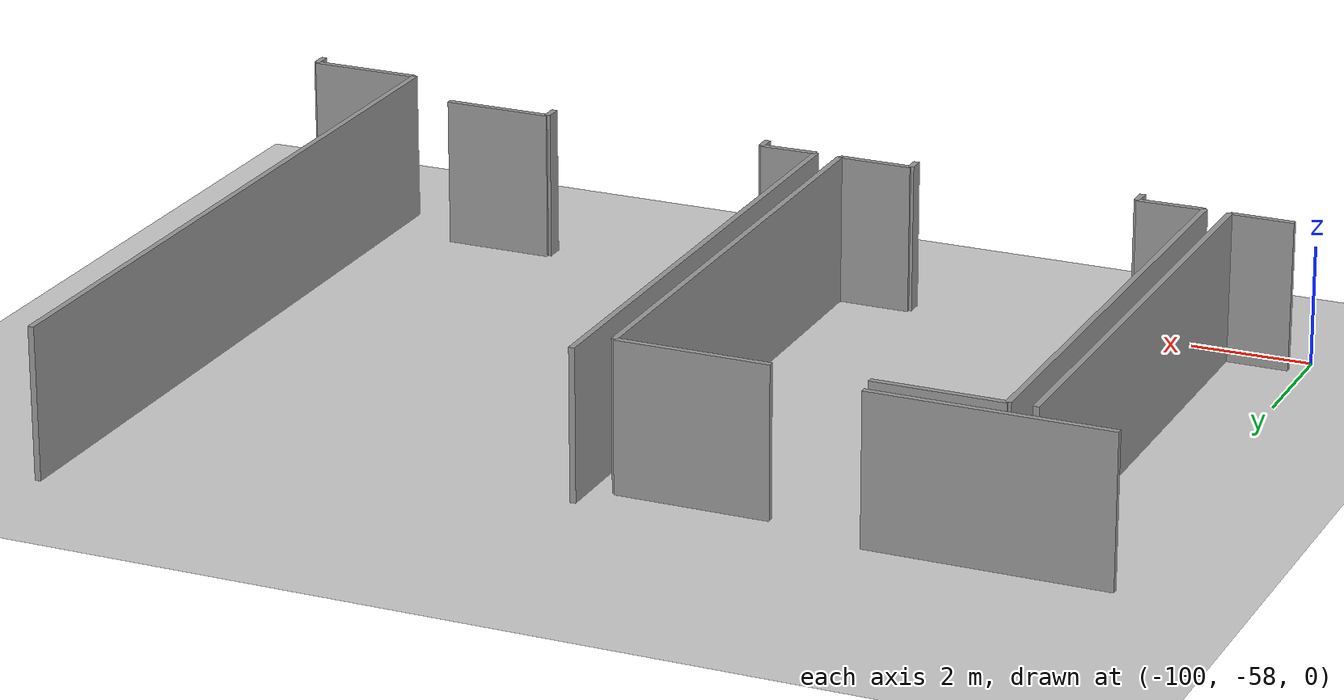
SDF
<sdf version="1.6">
 <world name="default">
  <model name="ground_plane">
   <static>1</static>
   <link name="link">
    <collision name="collision">
     <geometry><plane><normal>0 0 1</normal><size>100 100</size></plane></geometry>
     <surface><friction><ode><mu>100</mu><mu2>50</mu2></ode></friction></surface>
    </collision>
    <visual name="visual">
     <cast_shadows>0</cast_shadows>
     <geometry><plane><normal>0 0 1</normal><size>100 100</size></plane></geometry>
     <material>
      <script><uri>file://media/materials/scripts/gazebo.material</uri><name>Gazebo/Grey</name></script>
     </material>
    </visual>
   </link>
  </model>
  <model name="0510035520_A_40_1_103">
   <static>1</static>
   <link name="Wall_460">
    <collision name="Wall_460_Collision">
     <geometry><box><size>8.8786238666 0.1 2.5</size></box></geometry>
     <pose>4.4393119333 0 1.25 0 0 0</pose>
    </collision>
    <visual name="Wall_460_Visual">
     <pose>4.4393119333 0 1.25 0 0 0</pose>
     <geometry><box><size>8.8786238666 0.1 2.5</size></box></geometry>
     <material>
      <script><uri>file://media/materials/scripts/gazebo.material</uri><name>Gazebo/Grey</name></script>
      <ambient>1 1 1 1</ambient>
     </material>
    </visual>
    <pose>13.5324014442 -117.397732248 0 0 0 -1.57079632679</pose>
   </link>
   <link name="Wall_461">
    <collision name="Wall_461_Collision">
     <geometry><box><size>1.06953636081 0.1 2.5</size></box></geometry>
     <pose>0.534768180405 0 1.25 0 0 0</pose>
    </collision>
    <visual name="Wall_461_Visual">
     <pose>0.534768180405 0 1.25 0 0 0</pose>
     <geometry><box><size>1.06953636081 0.1 2.5</size></box></geometry>
     <material>
      <script><uri>file://media/materials/scripts/gazebo.material</uri><name>Gazebo/Grey</name></script>
      <ambient>1 1 1 1</ambient>
     </material>
    </visual>
    <pose>13.5324014442 -126.276356114 0 0 0 3.14159265359</pose>
   </link>
   <link name="Wall_479">
    <collision name="Wall_479_Collision">
     <geometry><box><size>3.93322377396 0.1 2.5</size></box></geometry>
     <pose>1.96661188698 0 1.25 0 0 0</pose>
    </collision>
    <visual name="Wall_479_Visual">
     <pose>1.96661188698 0 1.25 0 0 0</pose>
     <geometry><box><size>3.93322377396 0.1 2.5</size></box></geometry>
     <material>
      <script><uri>file://media/materials/scripts/gazebo.material</uri><name>Gazebo/Grey</name></script>
      <ambient>1 1 1 1</ambient>
     </material>
    </visual>
    <pose>16.0524362155 -116.996719564 0 0 0 3.14159265359</pose>
   </link>
   <link name="Wall_483">
    <collision name="Wall_483_Collision">
     <geometry><box><size>8.90400441622 0.1 2.5</size></box></geometry>
     <pose>4.45200220811 0 1.25 0 0 0</pose>
    </collision>
    <visual name="Wall_483_Visual">
     <pose>4.45200220811 0 1.25 0 0 0</pose>
     <geometry><box><size>8.90400441622 0.1 2.5</size></box></geometry>
     <material>
      <script><uri>file://media/materials/scripts/gazebo.material</uri><name>Gazebo/Grey</name></script>
      <ambient>1 1 1 1</ambient>
     </material>
    </visual>
    <pose>13.9598098997 -126.301736664 0 0 0 1.57079632679</pose>
   </link>
   <link name="Wall_484">
    <collision name="Wall_484_Collision">
     <geometry><box><size>2.15607768986 0.1 2.5</size></box></geometry>
     <pose>1.07803884493 0 1.25 0 0 0</pose>
    </collision>
    <visual name="Wall_484_Visual">
     <pose>1.07803884493 0 1.25 0 0 0</pose>
     <geometry><box><size>2.15607768986 0.1 2.5</size></box></geometry>
     <material>
      <script><uri>file://media/materials/scripts/gazebo.material</uri><name>Gazebo/Grey</name></script>
      <ambient>1 1 1 1</ambient>
     </material>
    </visual>
    <pose>13.9598098997 -117.397732248 0 0 0 0.0</pose>
   </link>
   <link name="Wall_485">
    <collision name="Wall_485_Collision">
     <geometry><box><size>2.52790274173 0.1 2.5</size></box></geometry>
     <pose>1.26395137087 0 1.25 0 0 0</pose>
    </collision>
    <visual name="Wall_485_Visual">
     <pose>1.26395137087 0 1.25 0 0 0</pose>
     <geometry><box><size>2.52790274173 0.1 2.5</size></box></geometry>
     <material>
      <script><uri>file://media/materials/scripts/gazebo.material</uri><name>Gazebo/Grey</name></script>
      <ambient>1 1 1 1</ambient>
     </material>
    </visual>
    <pose>17.6679081986 -117.397732248 0 0 0 0.0</pose>
   </link>
   <link name="Wall_486">
    <collision name="Wall_486_Collision">
     <geometry><box><size>8.90146636125 0.1 2.5</size></box></geometry>
     <pose>4.45073318063 0 1.25 0 0 0</pose>
    </collision>
    <visual name="Wall_486_Visual">
     <pose>4.45073318063 0 1.25 0 0 0</pose>
     <geometry><box><size>8.90146636125 0.1 2.5</size></box></geometry>
     <material>
      <script><uri>file://media/materials/scripts/gazebo.material</uri><name>Gazebo/Grey</name></script>
      <ambient>1 1 1 1</ambient>
     </material>
    </visual>
    <pose>20.1958109403 -117.397732248 0 0 0 -1.57079632679</pose>
   </link>
   <link name="Wall_487">
    <collision name="Wall_487_Collision">
     <geometry><box><size>1.23425612782 0.1 2.5</size></box></geometry>
     <pose>0.617128063908 0 1.25 0 0 0</pose>
    </collision>
    <visual name="Wall_487_Visual">
     <pose>0.617128063908 0 1.25 0 0 0</pose>
     <geometry><box><size>1.23425612782 0.1 2.5</size></box></geometry>
     <material>
      <script><uri>file://media/materials/scripts/gazebo.material</uri><name>Gazebo/Grey</name></script>
      <ambient>1 1 1 1</ambient>
     </material>
    </visual>
    <pose>20.1958109403 -126.299198609 0 0 0 3.14159265359</pose>
   </link>
   <link name="Wall_488">
    <collision name="Wall_488_Collision">
     <geometry><box><size>0.265480548981 0.1 2.5</size></box></geometry>
     <pose>0.132740274491 0 1.25 0 0 0</pose>
    </collision>
    <visual name="Wall_488_Visual">
     <pose>0.132740274491 0 1.25 0 0 0</pose>
     <geometry><box><size>0.265480548981 0.1 2.5</size></box></geometry>
     <material>
      <script><uri>file://media/materials/scripts/gazebo.material</uri><name>Gazebo/Grey</name></script>
      <ambient>1 1 1 1</ambient>
     </material>
    </visual>
    <pose>18.9615548125 -126.299198609 0 0 0 -1.57079632679</pose>
   </link>
   <link name="Wall_489">
    <collision name="Wall_489_Collision">
     <geometry><box><size>0.289084460124 0.1 2.5</size></box></geometry>
     <pose>0.144542230062 0 1.25 0 0 0</pose>
    </collision>
    <visual name="Wall_489_Visual">
     <pose>0.144542230062 0 1.25 0 0 0</pose>
     <geometry><box><size>0.289084460124 0.1 2.5</size></box></geometry>
     <material>
      <script><uri>file://media/materials/scripts/gazebo.material</uri><name>Gazebo/Grey</name></script>
      <ambient>1 1 1 1</ambient>
     </material>
    </visual>
    <pose>15.0859448861 -126.564679158 0 0 0 1.57079632679</pose>
   </link>
   <link name="Wall_490">
    <collision name="Wall_490_Collision">
     <geometry><box><size>1.12643837386 0.1 2.5</size></box></geometry>
     <pose>0.56321918693 0 1.25 0 0 0</pose>
    </collision>
    <visual name="Wall_490_Visual">
     <pose>0.56321918693 0 1.25 0 0 0</pose>
     <geometry><box><size>1.12643837386 0.1 2.5</size></box></geometry>
     <material>
      <script><uri>file://media/materials/scripts/gazebo.material</uri><name>Gazebo/Grey</name></script>
      <ambient>1 1 1 1</ambient>
     </material>
    </visual>
    <pose>15.0859448861 -126.275594698 0 0 0 -3.11838293885</pose>
   </link>
   <link name="Wall_491">
    <collision name="Wall_491_Collision">
     <geometry><box><size>9.50273158165 0.1 2.5</size></box></geometry>
     <pose>4.75136579083 0 1.25 0 0 0</pose>
    </collision>
    <visual name="Wall_491_Visual">
     <pose>4.75136579083 0 1.25 0 0 0</pose>
     <geometry><box><size>9.50273158165 0.1 2.5</size></box></geometry>
     <material>
      <script><uri>file://media/materials/scripts/gazebo.material</uri><name>Gazebo/Grey</name></script>
      <ambient>1 1 1 1</ambient>
     </material>
    </visual>
    <pose>20.6282955057 -126.318487827 0 0 0 1.57079632679</pose>
   </link>
   <link name="Wall_495">
    <collision name="Wall_495_Collision">
     <geometry><box><size>1.81826257448 0.1 2.5</size></box></geometry>
     <pose>0.909131287238 0 1.25 0 0 0</pose>
    </collision>
    <visual name="Wall_495_Visual">
     <pose>0.909131287238 0 1.25 0 0 0</pose>
     <geometry><box><size>1.81826257448 0.1 2.5</size></box></geometry>
     <material>
      <script><uri>file://media/materials/scripts/gazebo.material</uri><name>Gazebo/Grey</name></script>
      <ambient>1 1 1 1</ambient>
     </material>
    </visual>
    <pose>27.2716543677 -126.268488144 0 0 0 3.14159265359</pose>
   </link>
   <link name="Wall_496">
    <collision name="Wall_496_Collision">
     <geometry><box><size>0.295683403024 0.1 2.5</size></box></geometry>
     <pose>0.147841701512 0 1.25 0 0 0</pose>
    </collision>
    <visual name="Wall_496_Visual">
     <pose>0.147841701512 0 1.25 0 0 0</pose>
     <geometry><box><size>0.295683403024 0.1 2.5</size></box></geometry>
     <material>
      <script><uri>file://media/materials/scripts/gazebo.material</uri><name>Gazebo/Grey</name></script>
      <ambient>1 1 1 1</ambient>
     </material>
    </visual>
    <pose>25.4533917932 -126.268488144 0 0 0 -1.57079632679</pose>
   </link>
   <link name="Wall_497">
    <collision name="Wall_497_Collision">
     <geometry><box><size>0.268780020431 0.1 2.5</size></box></geometry>
     <pose>0.134390010216 0 1.25 0 0 0</pose>
    </collision>
    <visual name="Wall_497_Visual">
     <pose>0.134390010216 0 1.25 0 0 0</pose>
     <geometry><box><size>0.268780020431 0.1 2.5</size></box></geometry>
     <material>
      <script><uri>file://media/materials/scripts/gazebo.material</uri><name>Gazebo/Grey</name></script>
      <ambient>1 1 1 1</ambient>
     </material>
    </visual>
    <pose>21.5886955032 -126.564171547 0 0 0 1.57079632679</pose>
   </link>
   <link name="Wall_498">
    <collision name="Wall_498_Collision">
     <geometry><box><size>0.96067767446 0.1 2.5</size></box></geometry>
     <pose>0.48033883723 0 1.25 0 0 0</pose>
    </collision>
    <visual name="Wall_498_Visual">
     <pose>0.48033883723 0 1.25 0 0 0</pose>
     <geometry><box><size>0.96067767446 0.1 2.5</size></box></geometry>
     <material>
      <script><uri>file://media/materials/scripts/gazebo.material</uri><name>Gazebo/Grey</name></script>
      <ambient>1 1 1 1</ambient>
     </material>
    </visual>
    <pose>21.5886955032 -126.295391527 0 0 0 -3.11754866225</pose>
   </link>
   <link name="Wall_785">
    <collision name="Wall_785_Collision">
     <geometry><box><size>12.8709843212 0.1 2.5</size></box></geometry>
     <pose>6.43549216058 0 1.25 0 0 0</pose>
    </collision>
    <visual name="Wall_785_Visual">
     <pose>6.43549216058 0 1.25 0 0 0</pose>
     <geometry><box><size>12.8709843212 0.1 2.5</size></box></geometry>
     <material>
      <script><uri>file://media/materials/scripts/gazebo.material</uri><name>Gazebo/Grey</name></script>
      <ambient>1 1 1 1</ambient>
     </material>
    </visual>
    <pose>28.3899213837 -127.220766366 0 0 0 1.57079632679</pose>
   </link>
   <link name="Wall_791">
    <collision name="Wall_791_Collision">
     <geometry><box><size>0.278424629285 0.1 2.5</size></box></geometry>
     <pose>0.139212314643 0 1.25 0 0 0</pose>
    </collision>
    <visual name="Wall_791_Visual">
     <pose>0.139212314643 0 1.25 0 0 0</pose>
     <geometry><box><size>0.278424629285 0.1 2.5</size></box></geometry>
     <material>
      <script><uri>file://media/materials/scripts/gazebo.material</uri><name>Gazebo/Grey</name></script>
      <ambient>1 1 1 1</ambient>
     </material>
    </visual>
    <pose>30.2589450575 -127.502236661 0 0 0 1.57079632679</pose>
   </link>
   <link name="Wall_792">
    <collision name="Wall_792_Collision">
     <geometry><box><size>1.86902615524 0.1 2.5</size></box></geometry>
     <pose>0.934513077619 0 1.25 0 0 0</pose>
    </collision>
    <visual name="Wall_792_Visual">
     <pose>0.934513077619 0 1.25 0 0 0</pose>
     <geometry><box><size>1.86902615524 0.1 2.5</size></box></geometry>
     <material>
      <script><uri>file://media/materials/scripts/gazebo.material</uri><name>Gazebo/Grey</name></script>
      <ambient>1 1 1 1</ambient>
     </material>
    </visual>
    <pose>30.2589450575 -127.223812032 0 0 0 3.13996310587</pose>
   </link>
   <pose>-112.2 68.6448144365 0 0 0 0</pose>
  </model>
 </world>
</sdf>
